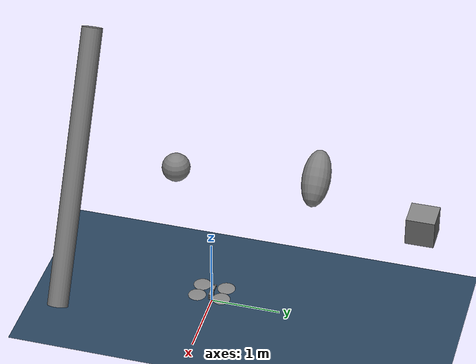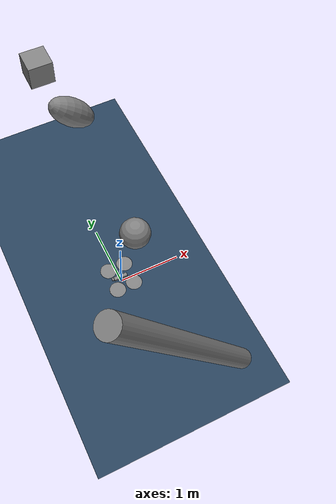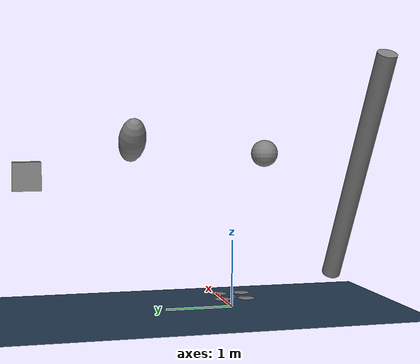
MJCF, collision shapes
<mujoco model="Skydio X2 scene">
  <include file="x2.xml"/>

  <statistic center="0 0 0.1" extent="0.6" meansize=".05"/>

  <visual>
    <headlight diffuse="0.6 0.6 0.6" ambient="0.3 0.3 0.3" specular="0 0 0"/>
    <rgba haze="0.15 0.25 0.35 1"/>
    <global azimuth="130" elevation="-40" offwidth="1280" offheight="720"/>
  </visual>

  <asset>
    <texture type="skybox" builtin="gradient" rgb1="0.3 0.5 0.7" rgb2="0 0 0" width="512" height="3072"/>
    <texture type="2d" name="groundplane" builtin="checker" mark="edge" rgb1="0.2 0.3 0.4" rgb2="0.1 0.2 0.3"
      markrgb="0.8 0.8 0.8" width="300" height="300"/>
    <material name="groundplane" texture="groundplane" texuniform="true" texrepeat="5 5" reflectance="0.2"/>
  </asset>

  <worldbody>
    <light name="top" pos="0 0 5" mode="trackcom"/>
    <light pos="0 0 5" dir="0 0 -1" directional="true" cutoff="180" castshadow="false"/>

    <camera name="fixed" pos="6.63413948 -3.83022222  6.9278761" quat="0.78488557 0.36599815 0.21130913 0.45315389" mode="fixed"/>

    <geom name="floor" size="10 10 0.05" type="plane" material="groundplane"/>

    <geom type="cylinder" size="0.15 2" pos="0 -2 2" quat="0.9659258262890683 0.0 -0.25881904510252074 0.0" rgba=".5 .5 .5 1" contype="0" conaffinity="0"/>

    <geom type="ellipsoid" size="0.2 0.2 0.2" pos="0 -0.5 2.3" quat="1 0 0 0" rgba=".5 .5 .5 1" contype="0" conaffinity="0"/>

    <geom type="ellipsoid" size="0.2 0.2 0.4" pos="0 1.5 2.5" quat="0.9238795325112867 0.0 -0.3826834323650898 0.0" rgba=".5 .5 .5 1" contype="0" conaffinity="0"/>

    <geom type="box" size="0.2 0.2 0.2" pos="0 3 2" quat="1 0 0 0" rgba=".5 .5 .5 1" contype="0" conaffinity="0"/>
  </worldbody>
</mujoco>

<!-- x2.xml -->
<mujoco model="Skydio X2">
  <compiler autolimits="true" assetdir="assets"/>

  <option timestep="0.01" density="1.225" viscosity="1.8e-5"/>

  <default>
    <default class="x2">
      <geom mass="0"/>
      <motor ctrlrange="0 13"/>
      <mesh scale="0.01 0.01 0.01"/>
      <default class="visual">
        <geom group="2" type="mesh" contype="0" conaffinity="0"/>
      </default>
      <default class="collision">
        <geom group="3" type="box"/>
        <default class="rotor">
          <geom type="ellipsoid" size=".13 .13 .01"/>
        </default>
      </default>
      <site group="5"/>
    </default>
  </default>

  <asset>
    <texture type="2d" file="X2_lowpoly_texture_SpinningProps_1024.png"/>
    <material name="phong3SG" texture="X2_lowpoly_texture_SpinningProps_1024"/>
    <material name="invisible" rgba="0 0 0 0"/>

    <mesh class="x2" file="X2_lowpoly.obj"/>
  </asset>

  <worldbody>
    <light name="spotlight" mode="targetbodycom" target="x2" pos="0 0 10"/>
    <body name="x2" pos="0 0 0.1" childclass="x2">
      <freejoint/>
      <camera name="track" pos="-1 0 .5" xyaxes="0 -1 0 1 0 2" mode="trackcom"/>
      <site name="imu" pos="0 0 .02"/>
      <geom material="phong3SG" mesh="X2_lowpoly" class="visual" quat="0 0 1 1"/>
      <geom class="collision" size=".06 .027 .02" pos=".04 0 .02"/>
      <geom class="collision" size=".06 .027 .02" pos=".04 0 .06"/>
      <geom class="collision" size=".05 .027 .02" pos="-.07 0 .065"/>
      <geom class="collision" size=".023 .017 .01" pos="-.137 .008 .065" quat="1 0 0 1"/>
      <geom name="rotor1" class="rotor" pos="-.14 -.18 .05" mass=".25"/>
      <geom name="rotor2" class="rotor" pos="-.14 .18 .05" mass=".25"/>
      <geom name="rotor3" class="rotor" pos=".14 .18 .08" mass=".25"/>
      <geom name="rotor4" class="rotor" pos=".14 -.18 .08" mass=".25"/>
      <geom size=".16 .04 .02" pos="0 0 0.02" type="ellipsoid" mass=".325" class="visual" material="invisible"/>
      <site name="thrust1" pos="-.14 -.18 .05"/>
      <site name="thrust2" pos="-.14 .18 .05"/>
      <site name="thrust3" pos=".14 .18 .08"/>
      <site name="thrust4" pos=".14 -.18 .08"/>
    </body>
  </worldbody>

  <actuator>
    <motor class="x2" name="thrust1" site="thrust1" gear="0 0 1 0 0 -.0201"/>
    <motor class="x2" name="thrust2" site="thrust2" gear="0 0 1 0 0  .0201"/>
    <motor class="x2" name="thrust3" site="thrust3" gear="0 0 1 0 0  .0201"/>
    <motor class="x2" name="thrust4" site="thrust4" gear="0 0 1 0 0 -.0201"/>
  </actuator>

  <sensor>
    <gyro name="body_gyro" site="imu"/>
    <accelerometer name="body_linacc" site="imu"/>
    <framequat name="body_quat" objtype="site" objname="imu"/>
  </sensor>

  <keyframe>
    <key name="hover" qpos="0 0 .3 1 0 0 0" ctrl="3.2495625 3.2495625 3.2495625 3.2495625"/>
  </keyframe>
</mujoco>
